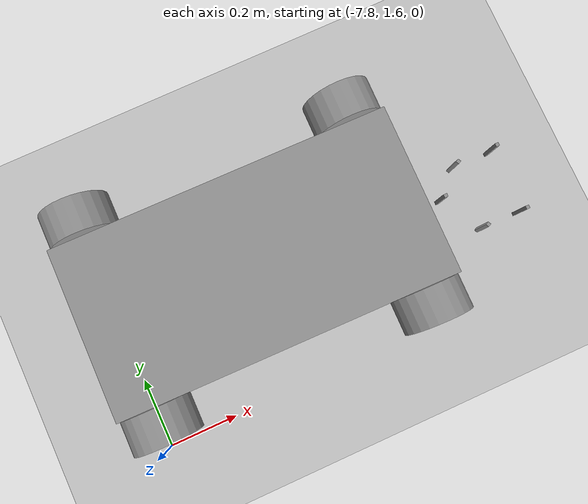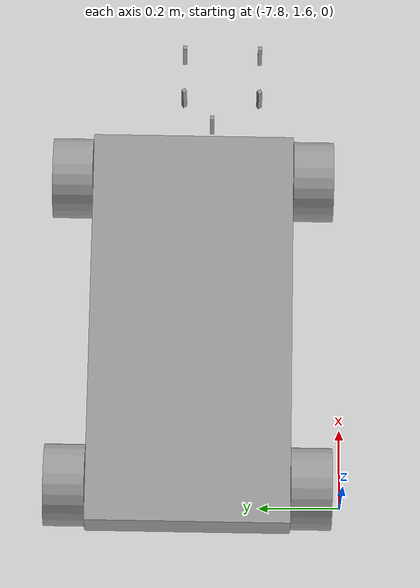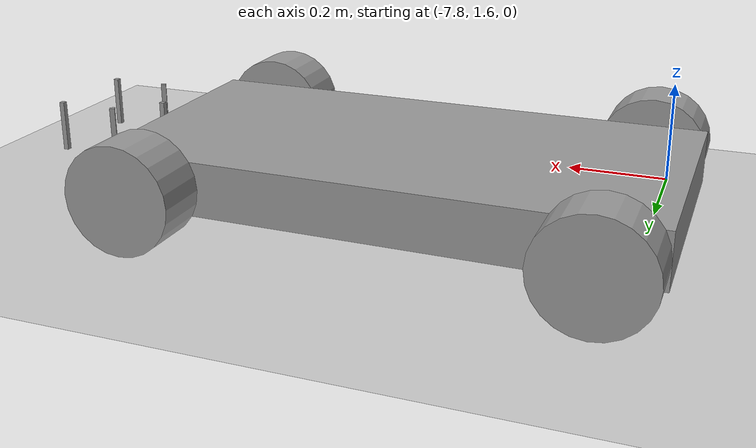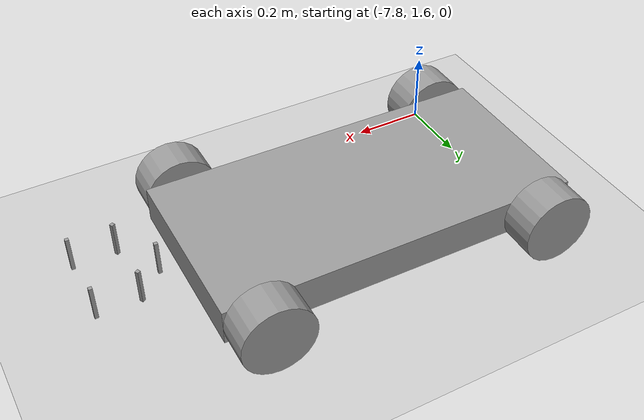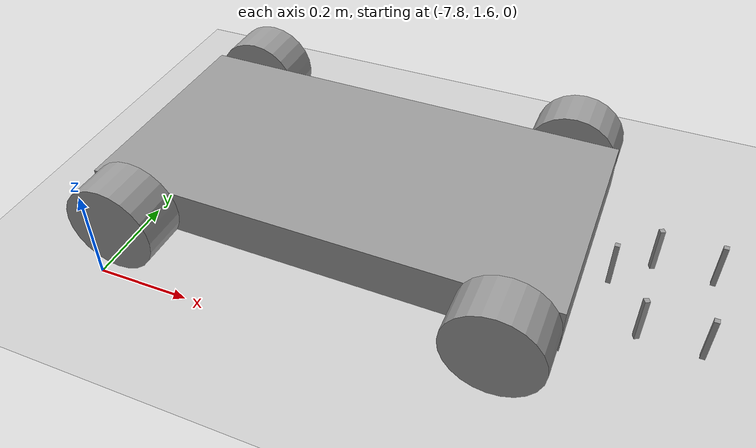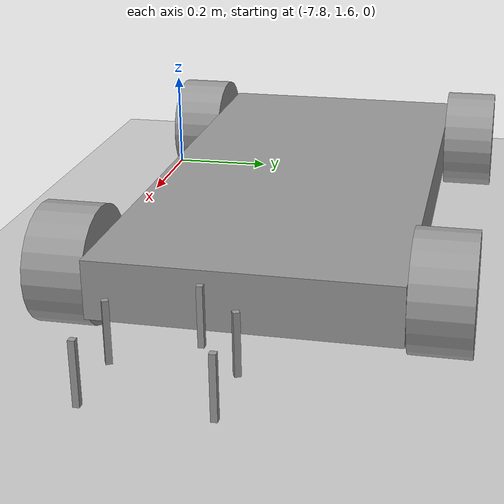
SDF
<sdf version="1.6">
 <world name="default">
  <model name="ground_plane">
   <static>1</static>
   <link name="link">
    <collision name="collision">
     <geometry><plane><normal>0 0 1</normal><size>100 100</size></plane></geometry>
     <surface>
      <contact><collide_bitmask>65535</collide_bitmask></contact>
      <friction><ode><mu>100</mu><mu2>50</mu2></ode></friction>
     </surface>
    </collision>
    <visual name="visual">
     <cast_shadows>0</cast_shadows>
     <geometry><plane><normal>0 0 1</normal><size>100 100</size></plane></geometry>
     <material>
      <script><uri>file://media/materials/scripts/gazebo.material</uri><name>Gazebo/Grey</name></script>
     </material>
    </visual>
   </link>
  </model>
  <model name="4wheelWithGripper">
   <model name="4_wheel_with_gripper">
    <link name="link_0">
     <pose>-0.32743 0.03164 0 0 -0 0</pose>
     <inertial>
      <mass>1</mass>
      <inertia>
       <ixx>0.166667</ixx>
       <ixy>0</ixy>
       <ixz>0</ixz>
       <iyy>0.166667</iyy>
       <iyz>0</iyz>
       <izz>0.166667</izz>
      </inertia>
     </inertial>
     <visual name="visual">
      <geometry><box><size>1 0.5 0.1</size></box></geometry>
      <material>
       <lighting>1</lighting>
       <script><uri>file://media/materials/scripts/gazebo.material</uri><name>Gazebo/Grey</name></script>
       <shader type="pixel"><normal_map>__default__</normal_map></shader>
       <ambient>0.3 0.3 0.3 1</ambient>
       <diffuse>0.7 0.7 0.7 1</diffuse>
       <specular>0.01 0.01 0.01 1</specular>
       <emissive>0 0 0 1</emissive>
      </material>
     </visual>
     <collision name="collision">
      <geometry><box><size>1 0.5 0.1</size></box></geometry>
      <surface>
       <friction>
        <ode><mu>1</mu><mu2>1</mu2><fdir1>0 0 0</fdir1><slip1>0</slip1><slip2>0</slip2></ode>
        <torsional>
         <coefficient>1</coefficient>
         <patch_radius>0</patch_radius>
         <surface_radius>0</surface_radius>
         <use_patch_radius>1</use_patch_radius>
         <ode><slip>0</slip></ode>
        </torsional>
       </friction>
       <bounce><restitution_coefficient>0</restitution_coefficient><threshold>1e+06</threshold></bounce>
       <contact>
        <collide_without_contact>0</collide_without_contact>
        <collide_without_contact_bitmask>1</collide_without_contact_bitmask>
        <collide_bitmask>1</collide_bitmask>
        <ode>
         <soft_cfm>0</soft_cfm>
         <soft_erp>0.2</soft_erp>
         <kp>1e+13</kp>
         <kd>1</kd>
         <max_vel>0.01</max_vel>
         <min_depth>0</min_depth>
        </ode>
        <bullet>
         <split_impulse>1</split_impulse>
         <split_impulse_penetration_threshold>-0.01</split_impulse_penetration_threshold>
         <soft_cfm>0</soft_cfm>
         <soft_erp>0.2</soft_erp>
         <kp>1e+13</kp>
         <kd>1</kd>
        </bullet>
       </contact>
      </surface>
     </collision>
    </link>
    <link name="link_2">
     <pose>-0.72743 -0.268373 0 1.5707 -0 0</pose>
     <inertial>
      <mass>1</mass>
      <inertia><ixx>0.145833</ixx><ixy>0</ixy><ixz>0</ixz><iyy>0.145833</iyy><iyz>0</iyz><izz>0.125</izz></inertia>
     </inertial>
     <visual name="visual">
      <geometry><cylinder><radius>0.1</radius><length>0.1</length></cylinder></geometry>
      <material>
       <lighting>1</lighting>
       <script><uri>file://media/materials/scripts/gazebo.material</uri><name>Gazebo/Grey</name></script>
       <shader type="pixel"><normal_map>__default__</normal_map></shader>
       <ambient>0.3 0.3 0.3 1</ambient>
       <diffuse>0.7 0.7 0.7 1</diffuse>
       <specular>0.01 0.01 0.01 1</specular>
       <emissive>0 0 0 1</emissive>
      </material>
     </visual>
     <collision name="collision">
      <geometry><cylinder><radius>0.1</radius><length>0.1</length></cylinder></geometry>
      <surface>
       <friction>
        <ode><mu>1</mu><mu2>1</mu2><fdir1>0 0 0</fdir1><slip1>0</slip1><slip2>0</slip2></ode>
        <torsional>
         <coefficient>1</coefficient>
         <patch_radius>0</patch_radius>
         <surface_radius>0</surface_radius>
         <use_patch_radius>1</use_patch_radius>
         <ode><slip>0</slip></ode>
        </torsional>
       </friction>
       <bounce><restitution_coefficient>0</restitution_coefficient><threshold>1e+06</threshold></bounce>
       <contact>
        <collide_without_contact>0</collide_without_contact>
        <collide_without_contact_bitmask>1</collide_without_contact_bitmask>
        <collide_bitmask>1</collide_bitmask>
        <ode>
         <soft_cfm>0</soft_cfm>
         <soft_erp>0.2</soft_erp>
         <kp>1e+13</kp>
         <kd>1</kd>
         <max_vel>0.01</max_vel>
         <min_depth>0</min_depth>
        </ode>
        <bullet>
         <split_impulse>1</split_impulse>
         <split_impulse_penetration_threshold>-0.01</split_impulse_penetration_threshold>
         <soft_cfm>0</soft_cfm>
         <soft_erp>0.2</soft_erp>
         <kp>1e+13</kp>
         <kd>1</kd>
        </bullet>
       </contact>
      </surface>
     </collision>
    </link>
    <link name="link_2_clone">
     <pose>0.07257 0.33165 0 1.5707 -0 0</pose>
     <inertial>
      <mass>1</mass>
      <inertia><ixx>0.145833</ixx><ixy>0</ixy><ixz>0</ixz><iyy>0.145833</iyy><iyz>0</iyz><izz>0.125</izz></inertia>
     </inertial>
     <visual name="visual">
      <geometry><cylinder><radius>0.1</radius><length>0.1</length></cylinder></geometry>
      <material>
       <lighting>1</lighting>
       <script><uri>file://media/materials/scripts/gazebo.material</uri><name>Gazebo/Grey</name></script>
       <shader type="pixel"><normal_map>__default__</normal_map></shader>
       <ambient>0.3 0.3 0.3 1</ambient>
       <diffuse>0.7 0.7 0.7 1</diffuse>
       <specular>0.01 0.01 0.01 1</specular>
       <emissive>0 0 0 1</emissive>
      </material>
     </visual>
     <collision name="collision">
      <geometry><cylinder><radius>0.1</radius><length>0.1</length></cylinder></geometry>
      <surface>
       <friction>
        <ode><mu>1</mu><mu2>1</mu2><fdir1>0 0 0</fdir1><slip1>0</slip1><slip2>0</slip2></ode>
        <torsional>
         <coefficient>1</coefficient>
         <patch_radius>0</patch_radius>
         <surface_radius>0</surface_radius>
         <use_patch_radius>1</use_patch_radius>
         <ode><slip>0</slip></ode>
        </torsional>
       </friction>
       <bounce><restitution_coefficient>0</restitution_coefficient><threshold>1e+06</threshold></bounce>
       <contact>
        <collide_without_contact>0</collide_without_contact>
        <collide_without_contact_bitmask>1</collide_without_contact_bitmask>
        <collide_bitmask>1</collide_bitmask>
        <ode>
         <soft_cfm>0</soft_cfm>
         <soft_erp>0.2</soft_erp>
         <kp>1e+13</kp>
         <kd>1</kd>
         <max_vel>0.01</max_vel>
         <min_depth>0</min_depth>
        </ode>
        <bullet>
         <split_impulse>1</split_impulse>
         <split_impulse_penetration_threshold>-0.01</split_impulse_penetration_threshold>
         <soft_cfm>0</soft_cfm>
         <soft_erp>0.2</soft_erp>
         <kp>1e+13</kp>
         <kd>1</kd>
        </bullet>
       </contact>
      </surface>
     </collision>
    </link>
    <link name="link_2_clone_0">
     <pose>-0.72743 0.33165 0 1.5707 -0 0</pose>
     <inertial>
      <mass>1</mass>
      <inertia><ixx>0.145833</ixx><ixy>0</ixy><ixz>0</ixz><iyy>0.145833</iyy><iyz>0</iyz><izz>0.125</izz></inertia>
     </inertial>
     <visual name="visual">
      <geometry><cylinder><radius>0.1</radius><length>0.1</length></cylinder></geometry>
      <material>
       <lighting>1</lighting>
       <script><uri>file://media/materials/scripts/gazebo.material</uri><name>Gazebo/Grey</name></script>
       <shader type="pixel"><normal_map>__default__</normal_map></shader>
       <ambient>0.3 0.3 0.3 1</ambient>
       <diffuse>0.7 0.7 0.7 1</diffuse>
       <specular>0.01 0.01 0.01 1</specular>
       <emissive>0 0 0 1</emissive>
      </material>
     </visual>
     <collision name="collision">
      <geometry><cylinder><radius>0.1</radius><length>0.1</length></cylinder></geometry>
      <surface>
       <friction>
        <ode><mu>1</mu><mu2>1</mu2><fdir1>0 0 0</fdir1><slip1>0</slip1><slip2>0</slip2></ode>
        <torsional>
         <coefficient>1</coefficient>
         <patch_radius>0</patch_radius>
         <surface_radius>0</surface_radius>
         <use_patch_radius>1</use_patch_radius>
         <ode><slip>0</slip></ode>
        </torsional>
       </friction>
       <bounce><restitution_coefficient>0</restitution_coefficient><threshold>1e+06</threshold></bounce>
       <contact>
        <collide_without_contact>0</collide_without_contact>
        <collide_without_contact_bitmask>1</collide_without_contact_bitmask>
        <collide_bitmask>1</collide_bitmask>
        <ode>
         <soft_cfm>0</soft_cfm>
         <soft_erp>0.2</soft_erp>
         <kp>1e+13</kp>
         <kd>1</kd>
         <max_vel>0.01</max_vel>
         <min_depth>0</min_depth>
        </ode>
        <bullet>
         <split_impulse>1</split_impulse>
         <split_impulse_penetration_threshold>-0.01</split_impulse_penetration_threshold>
         <soft_cfm>0</soft_cfm>
         <soft_erp>0.2</soft_erp>
         <kp>1e+13</kp>
         <kd>1</kd>
        </bullet>
       </contact>
      </surface>
     </collision>
    </link>
    <link name="link_2_clone_1">
     <pose>0.07257 -0.268369 0 1.5707 -0 0</pose>
     <inertial>
      <mass>1</mass>
      <inertia><ixx>0.145833</ixx><ixy>0</ixy><ixz>0</ixz><iyy>0.145833</iyy><iyz>0</iyz><izz>0.125</izz></inertia>
     </inertial>
     <visual name="visual">
      <geometry><cylinder><radius>0.1</radius><length>0.1</length></cylinder></geometry>
      <material>
       <lighting>1</lighting>
       <script><uri>file://media/materials/scripts/gazebo.material</uri><name>Gazebo/Grey</name></script>
       <shader type="pixel"><normal_map>__default__</normal_map></shader>
       <ambient>0.3 0.3 0.3 1</ambient>
       <diffuse>0.7 0.7 0.7 1</diffuse>
       <specular>0.01 0.01 0.01 1</specular>
       <emissive>0 0 0 1</emissive>
      </material>
     </visual>
     <collision name="collision">
      <geometry><cylinder><radius>0.1</radius><length>0.1</length></cylinder></geometry>
      <surface>
       <friction>
        <ode><mu>1</mu><mu2>1</mu2><fdir1>0 0 0</fdir1><slip1>0</slip1><slip2>0</slip2></ode>
        <torsional>
         <coefficient>1</coefficient>
         <patch_radius>0</patch_radius>
         <surface_radius>0</surface_radius>
         <use_patch_radius>1</use_patch_radius>
         <ode><slip>0</slip></ode>
        </torsional>
       </friction>
       <bounce><restitution_coefficient>0</restitution_coefficient><threshold>1e+06</threshold></bounce>
       <contact>
        <collide_without_contact>0</collide_without_contact>
        <collide_without_contact_bitmask>1</collide_without_contact_bitmask>
        <collide_bitmask>1</collide_bitmask>
        <ode>
         <soft_cfm>0</soft_cfm>
         <soft_erp>0.2</soft_erp>
         <kp>1e+13</kp>
         <kd>1</kd>
         <max_vel>0.01</max_vel>
         <min_depth>0</min_depth>
        </ode>
        <bullet>
         <split_impulse>1</split_impulse>
         <split_impulse_penetration_threshold>-0.01</split_impulse_penetration_threshold>
         <soft_cfm>0</soft_cfm>
         <soft_erp>0.2</soft_erp>
         <kp>1e+13</kp>
         <kd>1</kd>
        </bullet>
       </contact>
      </surface>
     </collision>
    </link>
    <link name="link_3">
     <pose>0.22257 -0.01336 0 0 -0 0</pose>
     <inertial>
      <mass>1</mass>
      <inertia>
       <ixx>0.166667</ixx>
       <ixy>0</ixy>
       <ixz>0</ixz>
       <iyy>0.166667</iyy>
       <iyz>0</iyz>
       <izz>0.166667</izz>
      </inertia>
     </inertial>
     <visual name="visual">
      <geometry><box><size>0.01 0.01 0.1</size></box></geometry>
      <material>
       <lighting>1</lighting>
       <script><uri>file://media/materials/scripts/gazebo.material</uri><name>Gazebo/Grey</name></script>
       <shader type="pixel"><normal_map>__default__</normal_map></shader>
       <ambient>0.3 0.3 0.3 1</ambient>
       <diffuse>0.7 0.7 0.7 1</diffuse>
       <specular>0.01 0.01 0.01 1</specular>
       <emissive>0 0 0 1</emissive>
      </material>
     </visual>
     <collision name="collision">
      <geometry><box><size>0.1 0.1 0.1</size></box></geometry>
      <surface>
       <friction>
        <ode><mu>1</mu><mu2>1</mu2><fdir1>0 0 0</fdir1><slip1>0</slip1><slip2>0</slip2></ode>
        <torsional>
         <coefficient>1</coefficient>
         <patch_radius>0</patch_radius>
         <surface_radius>0</surface_radius>
         <use_patch_radius>1</use_patch_radius>
         <ode><slip>0</slip></ode>
        </torsional>
       </friction>
       <bounce><restitution_coefficient>0</restitution_coefficient><threshold>1e+06</threshold></bounce>
       <contact>
        <collide_without_contact>0</collide_without_contact>
        <collide_without_contact_bitmask>1</collide_without_contact_bitmask>
        <collide_bitmask>1</collide_bitmask>
        <ode>
         <soft_cfm>0</soft_cfm>
         <soft_erp>0.2</soft_erp>
         <kp>1e+13</kp>
         <kd>1</kd>
         <max_vel>0.01</max_vel>
         <min_depth>0</min_depth>
        </ode>
        <bullet>
         <split_impulse>1</split_impulse>
         <split_impulse_penetration_threshold>-0.01</split_impulse_penetration_threshold>
         <soft_cfm>0</soft_cfm>
         <soft_erp>0.2</soft_erp>
         <kp>1e+13</kp>
         <kd>1</kd>
        </bullet>
       </contact>
      </surface>
     </collision>
    </link>
    <link name="link_3_clone">
     <pose>0.29472 0.05879 0 0 -0 0.5</pose>
     <inertial>
      <mass>1</mass>
      <inertia>
       <ixx>0.166667</ixx>
       <ixy>0</ixy>
       <ixz>0</ixz>
       <iyy>0.166667</iyy>
       <iyz>0</iyz>
       <izz>0.166667</izz>
      </inertia>
     </inertial>
     <visual name="visual">
      <geometry><box><size>0.01 0.01 0.1</size></box></geometry>
      <material>
       <lighting>1</lighting>
       <script><uri>file://media/materials/scripts/gazebo.material</uri><name>Gazebo/Grey</name></script>
       <shader type="pixel"><normal_map>__default__</normal_map></shader>
       <ambient>0.3 0.3 0.3 1</ambient>
       <diffuse>0.7 0.7 0.7 1</diffuse>
       <specular>0.01 0.01 0.01 1</specular>
       <emissive>0 0 0 1</emissive>
      </material>
     </visual>
     <collision name="collision">
      <geometry><box><size>0.1 0.1 0.1</size></box></geometry>
      <surface>
       <friction>
        <ode><mu>1</mu><mu2>1</mu2><fdir1>0 0 0</fdir1><slip1>0</slip1><slip2>0</slip2></ode>
        <torsional>
         <coefficient>1</coefficient>
         <patch_radius>0</patch_radius>
         <surface_radius>0</surface_radius>
         <use_patch_radius>1</use_patch_radius>
         <ode><slip>0</slip></ode>
        </torsional>
       </friction>
       <bounce><restitution_coefficient>0</restitution_coefficient><threshold>1e+06</threshold></bounce>
       <contact>
        <collide_without_contact>0</collide_without_contact>
        <collide_without_contact_bitmask>1</collide_without_contact_bitmask>
        <collide_bitmask>1</collide_bitmask>
        <ode>
         <soft_cfm>0</soft_cfm>
         <soft_erp>0.2</soft_erp>
         <kp>1e+13</kp>
         <kd>1</kd>
         <max_vel>0.01</max_vel>
         <min_depth>0</min_depth>
        </ode>
        <bullet>
         <split_impulse>1</split_impulse>
         <split_impulse_penetration_threshold>-0.01</split_impulse_penetration_threshold>
         <soft_cfm>0</soft_cfm>
         <soft_erp>0.2</soft_erp>
         <kp>1e+13</kp>
         <kd>1</kd>
        </bullet>
       </contact>
      </surface>
     </collision>
    </link>
    <link name="link_3_clone_1">
     <pose>0.41257 -0.13121 0 0 -0 0</pose>
     <inertial>
      <mass>1</mass>
      <inertia>
       <ixx>0.166667</ixx>
       <ixy>0</ixy>
       <ixz>0</ixz>
       <iyy>0.166667</iyy>
       <iyz>0</iyz>
       <izz>0.166667</izz>
      </inertia>
     </inertial>
     <visual name="visual">
      <geometry><box><size>0.01 0.01 0.1</size></box></geometry>
      <material>
       <lighting>1</lighting>
       <script><uri>file://media/materials/scripts/gazebo.material</uri><name>Gazebo/Grey</name></script>
       <shader type="pixel"><normal_map>__default__</normal_map></shader>
       <ambient>0.3 0.3 0.3 1</ambient>
       <diffuse>0.7 0.7 0.7 1</diffuse>
       <specular>0.01 0.01 0.01 1</specular>
       <emissive>0 0 0 1</emissive>
      </material>
     </visual>
     <collision name="collision">
      <geometry><box><size>0.1 0.1 0.1</size></box></geometry>
      <surface>
       <friction>
        <ode><mu>1</mu><mu2>1</mu2><fdir1>0 0 0</fdir1><slip1>0</slip1><slip2>0</slip2></ode>
        <torsional>
         <coefficient>1</coefficient>
         <patch_radius>0</patch_radius>
         <surface_radius>0</surface_radius>
         <use_patch_radius>1</use_patch_radius>
         <ode><slip>0</slip></ode>
        </torsional>
       </friction>
       <bounce><restitution_coefficient>0</restitution_coefficient><threshold>1e+06</threshold></bounce>
       <contact>
        <collide_without_contact>0</collide_without_contact>
        <collide_without_contact_bitmask>1</collide_without_contact_bitmask>
        <collide_bitmask>1</collide_bitmask>
        <ode>
         <soft_cfm>0</soft_cfm>
         <soft_erp>0.2</soft_erp>
         <kp>1e+13</kp>
         <kd>1</kd>
         <max_vel>0.01</max_vel>
         <min_depth>0</min_depth>
        </ode>
        <bullet>
         <split_impulse>1</split_impulse>
         <split_impulse_penetration_threshold>-0.01</split_impulse_penetration_threshold>
         <soft_cfm>0</soft_cfm>
         <soft_erp>0.2</soft_erp>
         <kp>1e+13</kp>
         <kd>1</kd>
        </bullet>
       </contact>
      </surface>
     </collision>
    </link>
    <link name="link_3_clone_1_clone">
     <pose>0.41257 0.05879 0 0 -0 0</pose>
     <inertial>
      <mass>1</mass>
      <inertia>
       <ixx>0.166667</ixx>
       <ixy>0</ixy>
       <ixz>0</ixz>
       <iyy>0.166667</iyy>
       <iyz>0</iyz>
       <izz>0.166667</izz>
      </inertia>
     </inertial>
     <visual name="visual">
      <geometry><box><size>0.01 0.01 0.1</size></box></geometry>
      <material>
       <lighting>1</lighting>
       <script><uri>file://media/materials/scripts/gazebo.material</uri><name>Gazebo/Grey</name></script>
       <shader type="pixel"><normal_map>__default__</normal_map></shader>
       <ambient>0.3 0.3 0.3 1</ambient>
       <diffuse>0.7 0.7 0.7 1</diffuse>
       <specular>0.01 0.01 0.01 1</specular>
       <emissive>0 0 0 1</emissive>
      </material>
     </visual>
     <collision name="collision">
      <geometry><box><size>0.1 0.1 0.1</size></box></geometry>
      <surface>
       <friction>
        <ode><mu>1</mu><mu2>1</mu2><fdir1>0 0 0</fdir1><slip1>0</slip1><slip2>0</slip2></ode>
        <torsional>
         <coefficient>1</coefficient>
         <patch_radius>0</patch_radius>
         <surface_radius>0</surface_radius>
         <use_patch_radius>1</use_patch_radius>
         <ode><slip>0</slip></ode>
        </torsional>
       </friction>
       <bounce><restitution_coefficient>0</restitution_coefficient><threshold>1e+06</threshold></bounce>
       <contact>
        <collide_without_contact>0</collide_without_contact>
        <collide_without_contact_bitmask>1</collide_without_contact_bitmask>
        <collide_bitmask>1</collide_bitmask>
        <ode>
         <soft_cfm>0</soft_cfm>
         <soft_erp>0.2</soft_erp>
         <kp>1e+13</kp>
         <kd>1</kd>
         <max_vel>0.01</max_vel>
         <min_depth>0</min_depth>
        </ode>
        <bullet>
         <split_impulse>1</split_impulse>
         <split_impulse_penetration_threshold>-0.01</split_impulse_penetration_threshold>
         <soft_cfm>0</soft_cfm>
         <soft_erp>0.2</soft_erp>
         <kp>1e+13</kp>
         <kd>1</kd>
        </bullet>
       </contact>
      </surface>
     </collision>
    </link>
    <link name="link_3_clone_clone">
     <pose>0.29472 -0.13121 0 0 -0 0.5</pose>
     <inertial>
      <mass>1</mass>
      <inertia>
       <ixx>0.166667</ixx>
       <ixy>0</ixy>
       <ixz>0</ixz>
       <iyy>0.166667</iyy>
       <iyz>0</iyz>
       <izz>0.166667</izz>
      </inertia>
     </inertial>
     <visual name="visual">
      <geometry><box><size>0.01 0.01 0.1</size></box></geometry>
      <material>
       <lighting>1</lighting>
       <script><uri>file://media/materials/scripts/gazebo.material</uri><name>Gazebo/Grey</name></script>
       <shader type="pixel"><normal_map>__default__</normal_map></shader>
       <ambient>0.3 0.3 0.3 1</ambient>
       <diffuse>0.7 0.7 0.7 1</diffuse>
       <specular>0.01 0.01 0.01 1</specular>
       <emissive>0 0 0 1</emissive>
      </material>
     </visual>
     <collision name="collision">
      <geometry><box><size>0.1 0.1 0.1</size></box></geometry>
      <surface>
       <friction>
        <ode><mu>1</mu><mu2>1</mu2><fdir1>0 0 0</fdir1><slip1>0</slip1><slip2>0</slip2></ode>
        <torsional>
         <coefficient>1</coefficient>
         <patch_radius>0</patch_radius>
         <surface_radius>0</surface_radius>
         <use_patch_radius>1</use_patch_radius>
         <ode><slip>0</slip></ode>
        </torsional>
       </friction>
       <bounce><restitution_coefficient>0</restitution_coefficient><threshold>1e+06</threshold></bounce>
       <contact>
        <collide_without_contact>0</collide_without_contact>
        <collide_without_contact_bitmask>1</collide_without_contact_bitmask>
        <collide_bitmask>1</collide_bitmask>
        <ode>
         <soft_cfm>0</soft_cfm>
         <soft_erp>0.2</soft_erp>
         <kp>1e+13</kp>
         <kd>1</kd>
         <max_vel>0.01</max_vel>
         <min_depth>0</min_depth>
        </ode>
        <bullet>
         <split_impulse>1</split_impulse>
         <split_impulse_penetration_threshold>-0.01</split_impulse_penetration_threshold>
         <soft_cfm>0</soft_cfm>
         <soft_erp>0.2</soft_erp>
         <kp>1e+13</kp>
         <kd>1</kd>
        </bullet>
       </contact>
      </surface>
     </collision>
    </link>
    <joint name="link_0_JOINT_0" type="revolute">
     <parent>link_0</parent>
     <child>link_2</child>
     <axis>
      <xyz>1 0 0</xyz>
      <use_parent_model_frame>0</use_parent_model_frame>
      <limit>
       <lower>-1.79769e+308</lower>
       <upper>1.79769e+308</upper>
       <effort>-1</effort>
       <velocity>-1</velocity>
      </limit>
      <dynamics>
       <spring_reference>0</spring_reference>
       <spring_stiffness>0</spring_stiffness>
       <damping>0</damping>
      </dynamics>
     </axis>
     <physics>
      <ode><limit><cfm>0</cfm><erp>0.2</erp></limit><suspension><cfm>0</cfm><erp>0.2</erp></suspension></ode>
     </physics>
    </joint>
    <joint name="link_0_JOINT_2" type="revolute">
     <parent>link_0</parent>
     <child>link_2_clone_0</child>
     <axis>
      <xyz>0 0 1</xyz>
      <use_parent_model_frame>0</use_parent_model_frame>
      <limit>
       <lower>-1.79769e+308</lower>
       <upper>1.79769e+308</upper>
       <effort>-1</effort>
       <velocity>-1</velocity>
      </limit>
      <dynamics>
       <spring_reference>0</spring_reference>
       <spring_stiffness>0</spring_stiffness>
       <damping>0</damping>
      </dynamics>
     </axis>
     <physics>
      <ode><limit><cfm>0</cfm><erp>0.2</erp></limit><suspension><cfm>0</cfm><erp>0.2</erp></suspension></ode>
     </physics>
    </joint>
    <joint name="link_0_JOINT_3" type="revolute">
     <parent>link_0</parent>
     <child>link_2_clone_1</child>
     <axis>
      <xyz>0 0 1</xyz>
      <use_parent_model_frame>0</use_parent_model_frame>
      <limit>
       <lower>-1.79769e+308</lower>
       <upper>1.79769e+308</upper>
       <effort>-1</effort>
       <velocity>-1</velocity>
      </limit>
      <dynamics>
       <spring_reference>0</spring_reference>
       <spring_stiffness>0</spring_stiffness>
       <damping>0</damping>
      </dynamics>
     </axis>
     <physics>
      <ode><limit><cfm>0</cfm><erp>0.2</erp></limit><suspension><cfm>0</cfm><erp>0.2</erp></suspension></ode>
     </physics>
    </joint>
    <joint name="link_0_JOINT_4" type="revolute">
     <parent>link_0</parent>
     <child>link_2_clone</child>
     <axis>
      <xyz>0 0 1</xyz>
      <use_parent_model_frame>0</use_parent_model_frame>
      <limit>
       <lower>-1.79769e+308</lower>
       <upper>1.79769e+308</upper>
       <effort>-1</effort>
       <velocity>-1</velocity>
      </limit>
      <dynamics>
       <spring_reference>0</spring_reference>
       <spring_stiffness>0</spring_stiffness>
       <damping>0</damping>
      </dynamics>
     </axis>
     <physics>
      <ode><limit><cfm>0</cfm><erp>0.2</erp></limit><suspension><cfm>0</cfm><erp>0.2</erp></suspension></ode>
     </physics>
    </joint>
    <joint name="link_0_JOINT_5" type="revolute">
     <parent>link_0</parent>
     <child>link_3</child>
     <axis>
      <xyz>0 0 1</xyz>
      <use_parent_model_frame>0</use_parent_model_frame>
      <limit>
       <lower>-1.79769e+308</lower>
       <upper>1.79769e+308</upper>
       <effort>-1</effort>
       <velocity>-1</velocity>
      </limit>
      <dynamics>
       <spring_reference>0</spring_reference>
       <spring_stiffness>0</spring_stiffness>
       <damping>0</damping>
      </dynamics>
     </axis>
     <physics>
      <ode><limit><cfm>0</cfm><erp>0.2</erp></limit><suspension><cfm>0</cfm><erp>0.2</erp></suspension></ode>
     </physics>
    </joint>
    <joint name="link_3_JOINT_8" type="revolute">
     <parent>link_3</parent>
     <child>link_3_clone_clone</child>
     <axis>
      <xyz>0 0 1</xyz>
      <use_parent_model_frame>0</use_parent_model_frame>
      <limit>
       <lower>-1.79769e+308</lower>
       <upper>1.79769e+308</upper>
       <effort>-1</effort>
       <velocity>-1</velocity>
      </limit>
      <dynamics>
       <spring_reference>0</spring_reference>
       <spring_stiffness>0</spring_stiffness>
       <damping>0</damping>
      </dynamics>
     </axis>
     <physics>
      <ode><limit><cfm>0</cfm><erp>0.2</erp></limit><suspension><cfm>0</cfm><erp>0.2</erp></suspension></ode>
     </physics>
    </joint>
    <joint name="link_3_JOINT_9" type="revolute">
     <parent>link_3</parent>
     <child>link_3_clone</child>
     <axis>
      <xyz>0 0 1</xyz>
      <use_parent_model_frame>0</use_parent_model_frame>
      <limit>
       <lower>-1.79769e+308</lower>
       <upper>1.79769e+308</upper>
       <effort>-1</effort>
       <velocity>-1</velocity>
      </limit>
      <dynamics>
       <spring_reference>0</spring_reference>
       <spring_stiffness>0</spring_stiffness>
       <damping>0</damping>
      </dynamics>
     </axis>
     <physics>
      <ode><limit><cfm>0</cfm><erp>0.2</erp></limit><suspension><cfm>0</cfm><erp>0.2</erp></suspension></ode>
     </physics>
    </joint>
    <joint name="link_3_clone_JOINT_11" type="revolute">
     <parent>link_3_clone</parent>
     <child>link_3_clone_1_clone</child>
     <axis>
      <xyz>1 0 0</xyz>
      <use_parent_model_frame>0</use_parent_model_frame>
      <limit>
       <lower>-1.79769e+308</lower>
       <upper>1.79769e+308</upper>
       <effort>-1</effort>
       <velocity>-1</velocity>
      </limit>
      <dynamics>
       <spring_reference>0</spring_reference>
       <spring_stiffness>0</spring_stiffness>
       <damping>0</damping>
      </dynamics>
     </axis>
     <physics>
      <ode><limit><cfm>0</cfm><erp>0.2</erp></limit><suspension><cfm>0</cfm><erp>0.2</erp></suspension></ode>
     </physics>
    </joint>
    <joint name="link_3_clone_clone_JOINT_10" type="revolute">
     <parent>link_3_clone_clone</parent>
     <child>link_3_clone_1</child>
     <axis>
      <xyz>1 0 0</xyz>
      <use_parent_model_frame>0</use_parent_model_frame>
      <limit>
       <lower>-1.79769e+308</lower>
       <upper>1.79769e+308</upper>
       <effort>-1</effort>
       <velocity>-1</velocity>
      </limit>
      <dynamics>
       <spring_reference>0</spring_reference>
       <spring_stiffness>0</spring_stiffness>
       <damping>0</damping>
      </dynamics>
     </axis>
     <physics>
      <ode><limit><cfm>0</cfm><erp>0.2</erp></limit><suspension><cfm>0</cfm><erp>0.2</erp></suspension></ode>
     </physics>
    </joint>
    <static>0</static>
   </model>
   <static>0</static>
   <pose>-7.04687 1.93392 0.100003 7e-06 -1e-06 -0.011341</pose>
  </model>
 </world>
</sdf>
